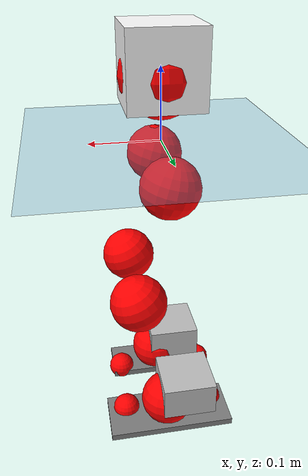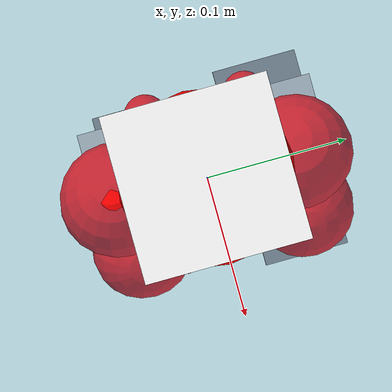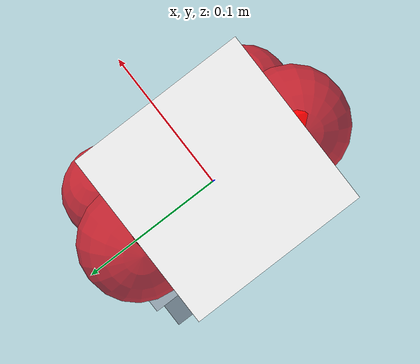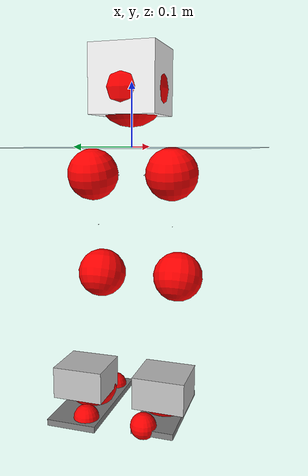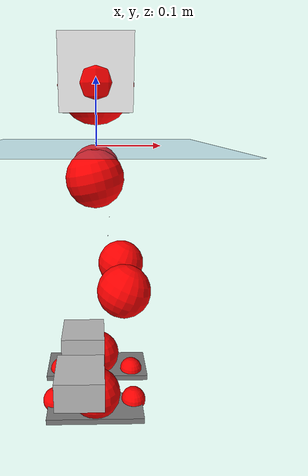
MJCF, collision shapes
<mujoco model="pi_12dof_release_v1">
  <compiler angle="radian" assetdir="assets" balanceinertia="true" inertiafromgeom="false"/>

  <option timestep="0.005" density="1.2" viscosity="2e-05"/>

  <size nkey="1"/>

  <visual>
    <quality shadowsize="8192"/>
    <map shadowclip="0.5"/>
  </visual>

  <default>
    <default class="/">
      <joint armature="0.01" damping="0.01" frictionloss="0.01"/>
      <geom contype="0" conaffinity="0" group="1" solref="-1000 -80"/>
      <site size="0.01 0.005 0.005" group="5"/>
      <general forcelimited="true" biastype="affine" gainprm="20" biasprm="0 -20 -0.5"/>
      <default class="foot">
        <geom size="0.0845 0.036 0.005" type="box" condim="6" group="4" priority="1" friction="0.9 0.2 0.2" solimp="0.015 1 0.005"/>
      </default>
      <default class="reward_collision_sphere">
        <geom group="5" rgba="1 0 0 1"/>
      </default>
    </default>
  </default>

  <asset>
    <texture type="skybox" colorspace="auto" name="//unnamed_texture_0" builtin="gradient" rgb1="0.95 0.95 0.95" rgb2="0.95 0.95 0.95" width="100" height="600"/>
    <texture type="2d" colorspace="auto" name="texplane" builtin="checker" rgb1="0.345 0.575 0.748" rgb2="0.345 0.575 0.748" markrgb="1 1 1" width="512" height="512"/>
    <material name="MatPlane" class="/" texture="texplane" texuniform="true" texrepeat="2 2" specular="0.9"/>
    <mesh name="baselink_1" class="/" file="baselink_1.STL"/>
    <mesh name="r_hip_pitch_link" class="/" file="r_hip_pitch_link.STL"/>
    <mesh name="r_hip_roll_link" class="/" file="r_hip_roll_link.STL"/>
    <mesh name="r_thigh_link" class="/" file="r_thigh_link.STL"/>
    <mesh name="r_calf_link" class="/" file="r_calf_link.STL"/>
    <mesh name="r_ankle_pitch_link" class="/" file="r_ankle_pitch_link.STL"/>
    <mesh name="r_ankle_roll_link" class="/" file="r_ankle_roll_link.STL"/>
    <mesh name="l_hip_pitch_link" class="/" file="l_hip_pitch_link.STL"/>
    <mesh name="l_hip_roll_link" class="/" file="l_hip_roll_link.STL"/>
    <mesh name="l_thigh_link" class="/" file="l_thigh_link.STL"/>
    <mesh name="l_calf_link" class="/" file="l_calf_link.STL"/>
    <mesh name="l_ankle_pitch_link" class="/" file="l_ankle_pitch_link.STL"/>
    <mesh name="l_ankle_roll_link" class="/" file="l_ankle_roll_link.STL"/>
  </asset>

  <worldbody>
    <geom name="floor" class="/" size="100 100 0.125" type="plane" group="0" material="MatPlane"/>
    <light name="toplight_shadow" class="/" pos="0 0 5" dir="0.0990148 0.0990148 -0.990148" type="directional" ambient="0.04 0.04 0.04" diffuse="0.55 0.55 0.55" specular="0.12 0.12 0.12"/>
    <light name="toplight_fill" class="/" pos="0 0 5" dir="0.0990148 0.0990148 -0.990148" type="directional" castshadow="false" ambient="0.04 0.04 0.04" diffuse="0.3 0.3 0.3" specular="0.08 0.08 0.08"/>
    <body name="trunk" pos="-0.000230342 0.000116332 -0.00246225" quat="1 0.000182645 0.000211494 0.00034983">
      <inertial pos="0.00145464 0.000681818 0.0543296" quat="0.695175 0.00968977 0.00882485 0.718721" mass="2.42279" diaginertia="0.0104299 0.0033461 0.0150648"/>
      <joint name="//unnamed_joint_0" type="free"/>
      <geom name="//unnamed_geom_1" class="/" type="mesh" density="0" rgba="1 1 1 1" mesh="baselink_1"/>
      <geom name="//unnamed_geom_2" class="/" size="0.0524005 0.0524005 0.0524005" pos="0 0 0.10396" type="box" rgba="1 1 1 1"/>
      <geom name="//unnamed_geom_3" class="reward_collision_sphere" size="0.0576405" pos="0 0 0.0909646"/>
      <site name="imu" class="/" pos="0.0111131 -0.0140664 0.0119552" size="0.0104801"/>
      <camera name="track" class="/" pos="0 -1.65568 0" quat="0.707107 0.707107 0 0" mode="trackcom"/>
      <camera name="ego_camera" class="/" pos="0.0762519 0 0.233909" quat="-0.5 -0.5 0.5 0.5"/>
      <body name="r_hip_pitch_link" pos="-2.77505e-06 -0.0213726 -0.0414918" quat="0.99227 0.000700047 -0.124097 -0.000321812">
        <inertial pos="-0.000624074 -0.0458292 -0.00297264" quat="-0.0190045 0.705949 -0.0282634 0.707443" mass="0.40846" diaginertia="0.000115411 3.59564e-05 0.000311449"/>
        <joint name="r_hip_pitch_joint" class="/" pos="0 0 0" axis="0.000133178 -1 8.48733e-05" stiffness="0.00895819" range="-1.74573 1.1972" armature="0.00902231" damping="0.00189192" frictionloss="0.00929647"/>
        <geom name="//unnamed_geom_4" class="/" type="mesh" density="0" rgba="0.75294 0.75294 0.75294 1" mesh="r_hip_pitch_link"/>
        <geom name="//unnamed_geom_5" class="/" size="0.000524005 0.000524005 0.000524005" type="box" rgba="0.75294 0.75294 0.75294 1"/>
        <body name="r_hip_roll_link" pos="-0.00121476 -0.0457471 0.00289927" quat="1 -4.18928e-07 -1.42752e-05 2.1853e-05">
          <inertial pos="-0.00128942 0.00128855 -0.0820306" quat="0.70457 -0.0774778 -0.0785551 0.701005" mass="0.447758" diaginertia="0.000360559 0.000109244 0.000468225"/>
          <joint name="r_hip_roll_joint" class="/" pos="0 0 0" axis="-0.999955 0.00943866 0.000287891" range="-0.116106 0.511951" armature="0.0103691" damping="0.0259785" frictionloss="0.0119506"/>
          <geom name="//unnamed_geom_6" class="/" type="mesh" density="0" rgba="0.75294 0.75294 0.75294 1" mesh="r_hip_roll_link"/>
          <geom name="//unnamed_geom_7" class="/" size="0.000524005 0.000524005 0.000524005" type="box" rgba="0.75294 0.75294 0.75294 1"/>
          <geom name="//unnamed_geom_8" class="reward_collision_sphere" size="0.0419204"/>
          <body name="r_thigh_link" pos="-0.00260777 0.00286466 -0.0879966" quat="1 5.89731e-05 -0.000190665 0.000463492">
            <inertial pos="0.000633712 0.000751018 -0.0607713" quat="0.738025 0.674773 0.000313503 0.000541822" mass="0.122312" diaginertia="0.000135457 3.69672e-05 0.000205987"/>
            <joint name="r_thigh_joint" class="/" pos="0 0 0" axis="0.00471935 -0.00104193 -0.999988" stiffness="0.00105166" range="-0.29638 0.549539" armature="0.0113931" damping="0.00814994" frictionloss="0.0102656"/>
            <geom name="//unnamed_geom_9" class="/" type="mesh" density="0" rgba="0.75294 0.75294 0.75294 1" mesh="r_thigh_link"/>
            <geom name="//unnamed_geom_10" class="/" size="0.000524005 0.000524005 0.000524005" type="box" rgba="0.75294 0.75294 0.75294 1"/>
            <body name="r_calf_link" pos="0.00244662 -0.0047442 -0.0917575" quat="0.947892 0.000492764 0.318592 0.000288743">
              <inertial pos="0.000797005 9.80291e-05 -0.0913321" quat="0.99998 -0.00311958 -0.000766742 0.00538392" mass="0.94464" diaginertia="0.00381255 0.00129379 0.000646098"/>
              <joint name="r_calf_joint" class="/" pos="0 0 0" axis="-0.00196109 -0.999998 -4.01538e-05" stiffness="0.00681622" range="-1.70342 0.655413" armature="0.0104741" damping="0.00621562" frictionloss="0.00956968"/>
              <geom name="//unnamed_geom_11" class="/" type="mesh" density="0" rgba="0.75294 0.75294 0.75294 1" mesh="r_calf_link"/>
              <geom name="//unnamed_geom_12" class="/" size="0.000524005 0.000524005 0.000524005" type="box" rgba="0.75294 0.75294 0.75294 1"/>
              <geom name="//unnamed_geom_13" class="reward_collision_sphere" size="0.0419204"/>
              <body name="r_ankle_pitch_link" pos="4.01402e-05 0.00303942 -0.181979" quat="0.979988 0.000724495 -0.199055 0.000332455">
                <inertial pos="0.00496674 0.00297345 -0.000295226" quat="0.00267001 0.705997 -0.00295009 0.708203" mass="0.194845" diaginertia="0.000329541 8.31288e-05 0.000446332"/>
                <joint name="r_ankle_pitch_joint" class="/" pos="0 0 0" axis="-0.00883487 -0.999924 0.00864507" range="-1.35045 0.554088" armature="0.0103848" damping="0.014307" frictionloss="0.0113433"/>
                <geom name="//unnamed_geom_14" class="/" type="mesh" density="0" rgba="0.75294 0.75294 0.75294 1" mesh="r_ankle_pitch_link"/>
                <geom name="//unnamed_geom_15" class="/" size="0.0408724 0.0419204 0.0262002" type="box" rgba="0.75294 0.75294 0.75294 1"/>
                <body name="r_ankle_roll_link" pos="0.0771374 0.00452074 0.00257384" quat="1 3.89493e-05 9.61581e-05 0.000152216">
                  <inertial pos="-0.0266364 -0.00102445 -0.01867" quat="0.559818 0.427397 0.429035 0.565565" mass="0.605088" diaginertia="0.00127884 0.000407135 0.00106539"/>
                  <joint name="r_ankle_roll_joint" class="/" pos="0 0 0" axis="-0.999996 -0.00227739 0.00178543" stiffness="0.00319919" range="-0.157331 0.145313" armature="0.0106302" damping="0.00954103" frictionloss="0.0103884"/>
                  <geom name="//unnamed_geom_16" class="/" type="mesh" density="0" rgba="0.75294 0.75294 0.75294 1" mesh="r_ankle_roll_link"/>
                  <geom name="//unnamed_geom_17" class="/" type="mesh" rgba="0.75294 0.75294 0.75294 1" mesh="r_ankle_roll_link"/>
                  <geom name="right_foot" class="foot" size="0.0813451 0.0339807 0.00496458" pos="-0.0518513 0 -0.0571777"/>
                  <geom name="//unnamed_geom_19" class="reward_collision_sphere" size="0.0419204" pos="-0.0508346 0 -0.0259899"/>
                  <geom name="//unnamed_geom_20" class="reward_collision_sphere" size="0.0209602" pos="0.0152504 0.0165568 -0.0519798"/>
                  <geom name="//unnamed_geom_21" class="reward_collision_sphere" size="0.0209602" pos="-0.122003 0.0165568 -0.0519798"/>
                  <site name="right_foot" class="foot" pos="-0.0518513 0 -0.0571777" size="0.0104801"/>
                </body>
              </body>
            </body>
          </body>
        </body>
      </body>
      <body name="l_hip_pitch_link" pos="-0.0019768 0.0210145 -0.0418" quat="0.992212 9.05443e-05 -0.124558 -0.000103852">
        <inertial pos="-0.00189384 0.0431347 0.000561599" quat="-0.0408849 0.70432 0.0264885 0.708209" mass="0.452049" diaginertia="0.000143239 4.22316e-05 0.000360781"/>
        <joint name="l_hip_pitch_joint" class="/" pos="0 0 0" axis="0.000990066 0.99999 -0.00443913" stiffness="0.000105693" range="-1.20873 1.73111" armature="0.01201" damping="0.0257036" frictionloss="0.00956375"/>
        <geom name="//unnamed_geom_22" class="/" type="mesh" density="0" rgba="0.75294 0.75294 0.75294 1" mesh="l_hip_pitch_link"/>
        <geom name="//unnamed_geom_23" class="/" size="0.000524005 0.000524005 0.000524005" type="box" rgba="0.75294 0.75294 0.75294 1"/>
        <body name="l_hip_roll_link" pos="0.00126253 0.0452861 3.06778e-05" quat="0.999999 -0.000350234 0.00133368 -0.000326382">
          <inertial pos="-0.00254499 -0.00264023 -0.0796625" quat="0.698148 -0.0805894 -0.0890393 0.705809" mass="0.440705" diaginertia="0.00036344 0.000105158 0.000497586"/>
          <joint name="l_hip_roll_joint" class="/" pos="0 0 0" axis="-0.99993 -0.00906143 -0.0076509" range="-0.508198 0.104352" armature="0.0111591" damping="0.0131039" frictionloss="0.0101341"/>
          <geom name="//unnamed_geom_24" class="/" type="mesh" density="0" rgba="0.75294 0.75294 0.75294 1" mesh="l_hip_roll_link"/>
          <geom name="//unnamed_geom_25" class="/" size="0.000524005 0.000524005 0.000524005" type="box" rgba="0.75294 0.75294 0.75294 1"/>
          <geom name="//unnamed_geom_26" class="reward_collision_sphere" size="0.0419204"/>
          <body name="l_thigh_link" pos="0.00245411 0.000821708 -0.0896134" quat="1 -0.000938886 0.000113255 -9.58058e-05">
            <inertial pos="0.00214609 -0.00385698 -0.0640741" quat="0.675263 0.737576 0.000238971 -0.000703642" mass="0.126249" diaginertia="0.000130992 3.68765e-05 0.000210212"/>
            <joint name="l_thigh_joint" class="/" pos="0 0 0" axis="-0.000236376 -0.00607544 -0.999982" range="-0.570289 0.268012" armature="0.00915751" damping="0.0172076" frictionloss="0.0091939"/>
            <geom name="//unnamed_geom_27" class="/" type="mesh" density="0" rgba="0.75294 0.75294 0.75294 1" mesh="l_thigh_link"/>
            <geom name="//unnamed_geom_28" class="/" size="0.000524005 0.000524005 0.000524005" type="box" rgba="0.75294 0.75294 0.75294 1"/>
            <body name="l_calf_link" pos="-0.000527292 0.00272787 -0.0915344" quat="0.947586 -0.000805524 0.3195 -5.83268e-05">
              <inertial pos="0.000785716 0.00531112 -0.0936461" quat="0.999978 0.00484057 -0.000141927 0.0045376" mass="0.887364" diaginertia="0.00382426 0.00126959 0.000625519"/>
              <joint name="l_calf_joint" class="/" pos="0 0 0" axis="-0.00346889 0.999994 8.93132e-05" stiffness="0.012345" range="-0.626832 1.59707" armature="0.0107698" damping="0.0146965" frictionloss="0.00906487"/>
              <geom name="//unnamed_geom_29" class="/" type="mesh" density="0" rgba="0.75294 0.75294 0.75294 1" mesh="l_calf_link"/>
              <geom name="//unnamed_geom_30" class="/" size="0.000524005 0.000524005 0.000524005" type="box" rgba="0.75294 0.75294 0.75294 1"/>
              <geom name="//unnamed_geom_31" class="reward_collision_sphere" size="0.0419204"/>
              <body name="l_ankle_pitch_link" pos="-0.000659295 0.00281162 -0.181464" quat="0.980076 3.52662e-05 -0.198625 1.43226e-05">
                <inertial pos="0.00510814 -0.0013221 0.00280032" quat="0.000999945 0.700868 0.00672699 0.713258" mass="0.20256" diaginertia="0.000340624 8.75745e-05 0.000450829"/>
                <joint name="l_ankle_pitch_joint" class="/" pos="0 0 0" axis="0.00334397 0.999992 -0.00236941" stiffness="0.00343581" range="-0.490849 1.2962" armature="0.0101781" damping="0.00663218" frictionloss="0.00987543"/>
                <geom name="//unnamed_geom_32" class="/" type="mesh" density="0" rgba="0.75294 0.75294 0.75294 1" mesh="l_ankle_pitch_link"/>
                <geom name="//unnamed_geom_33" class="/" size="0.0408724 0.0419204 0.0262002" type="box" rgba="0.75294 0.75294 0.75294 1"/>
                <body name="l_ankle_roll_link" pos="0.0789245 -0.000901012 0.00125278" quat="0.999999 0.000343982 0.00079946 0.000748427">
                  <inertial pos="-0.0221616 0.000688219 -0.0192944" quat="0.559754 0.431689 0.432938 0.559361" mass="0.568494" diaginertia="0.00119542 0.000377728 0.00100564"/>
                  <joint name="l_ankle_roll_joint" class="/" pos="0 0 0" axis="-0.999996 0.00229364 -0.00150785" range="-0.164438 0.167267" armature="0.0105323" damping="0.00948231" frictionloss="0.0106897"/>
                  <geom name="//unnamed_geom_34" class="/" type="mesh" density="0" rgba="0.75294 0.75294 0.75294 1" mesh="l_ankle_roll_link"/>
                  <geom name="//unnamed_geom_35" class="/" type="mesh" rgba="0.75294 0.75294 0.75294 1" mesh="l_ankle_roll_link"/>
                  <geom name="left_foot" class="foot" size="0.097234 0.0410368 0.00505102" pos="-0.0518513 0 -0.0571777"/>
                  <geom name="//unnamed_geom_37" class="reward_collision_sphere" size="0.0419204" pos="-0.0508346 0 -0.0259899"/>
                  <geom name="//unnamed_geom_38" class="reward_collision_sphere" size="0.0209602" pos="0.0152504 -0.0165568 -0.0519798"/>
                  <geom name="//unnamed_geom_39" class="reward_collision_sphere" size="0.0209602" pos="-0.122003 -0.0165568 -0.0519798"/>
                  <site name="left_foot" class="foot" pos="-0.0518513 0 -0.0571777" size="0.0104801"/>
                </body>
              </body>
            </body>
          </body>
        </body>
      </body>
    </body>
  </worldbody>

  <contact>
    <pair class="/" geom1="floor" geom2="right_foot" name="//unnamed_contact_1"/>
    <pair class="/" geom1="floor" geom2="left_foot" name="//unnamed_contact_0"/>
  </contact>

  <actuator>
    <general name="r_hip_pitch_joint" class="/" joint="r_hip_pitch_joint" forcerange="-20.0284 20.0284" gainprm="19.688" biasprm="0 -19.688 -0.546054"/>
    <general name="r_hip_roll_joint" class="/" joint="r_hip_roll_joint" forcerange="-22.1551 22.1551" gainprm="19.688" biasprm="0 -19.688 -0.546054"/>
    <general name="r_thigh_joint" class="/" joint="r_thigh_joint" forcerange="-19.7872 19.7872" gainprm="19.688" biasprm="0 -19.688 -0.546054"/>
    <general name="r_calf_joint" class="/" joint="r_calf_joint" forcerange="-23.7631 23.7631" gainprm="19.688" biasprm="0 -19.688 -0.546054"/>
    <general name="r_ankle_pitch_joint" class="/" joint="r_ankle_pitch_joint" forcerange="-24.2324 24.2324" gainprm="19.688" biasprm="0 -19.688 -0.546054"/>
    <general name="r_ankle_roll_joint" class="/" joint="r_ankle_roll_joint" forcerange="-22.9017 22.9017" gainprm="19.688" biasprm="0 -19.688 -0.546054"/>
    <general name="l_hip_pitch_joint" class="/" joint="l_hip_pitch_joint" forcerange="-19.6998 19.6998" gainprm="19.688" biasprm="0 -19.688 -0.546054"/>
    <general name="l_hip_roll_joint" class="/" joint="l_hip_roll_joint" forcerange="-22.2635 22.2635" gainprm="19.688" biasprm="0 -19.688 -0.546054"/>
    <general name="l_thigh_joint" class="/" joint="l_thigh_joint" forcerange="-23.1943 23.1943" gainprm="19.688" biasprm="0 -19.688 -0.546054"/>
    <general name="l_calf_joint" class="/" joint="l_calf_joint" forcerange="-20.4659 20.4659" gainprm="19.688" biasprm="0 -19.688 -0.546054"/>
    <general name="l_ankle_pitch_joint" class="/" joint="l_ankle_pitch_joint" forcerange="-23.7957 23.7957" gainprm="19.688" biasprm="0 -19.688 -0.546054"/>
    <general name="l_ankle_roll_joint" class="/" joint="l_ankle_roll_joint" forcerange="-19.7579 19.7579" gainprm="19.688" biasprm="0 -19.688 -0.546054"/>
  </actuator>

  <sensor>
    <gyro site="imu" name="imu_angular_velocity"/>
    <velocimeter site="imu" name="imu_linear_velocity"/>
    <framelinvel objtype="site" objname="left_foot" name="left_foot_global_linear_velocity"/>
    <framelinvel objtype="site" objname="right_foot" name="right_foot_global_linear_velocity"/>
  </sensor>

  <keyframe>
    <key name="home" qpos="0 0 0.291 1 0 0 0 0.4 0 0 -0.8 0.4 0 -0.4 0 0 0.8 -0.4 0"/>
  </keyframe>
</mujoco>
